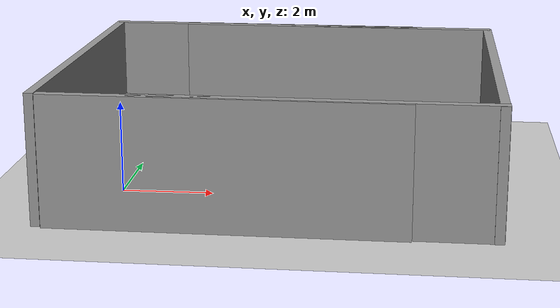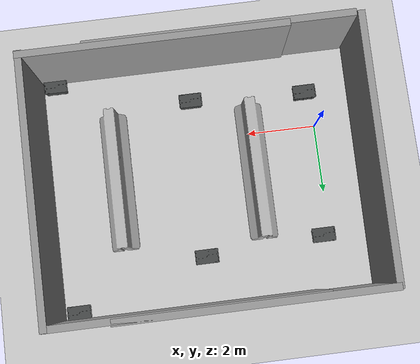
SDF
<sdf version="1.6">
 <world name="default">
  <light name="sun" type="directional">
   <pose>0 0 10 0 -0 0</pose>
   <diffuse>0.8 0.8 0.8 1</diffuse>
   <specular>0.1 0.1 0.1 1</specular>
   <attenuation>
    <range>1000</range>
    <constant>0.9</constant>
    <linear>0.01</linear>
    <quadratic>0.001</quadratic>
   </attenuation>
   <direction>-0.5 0.5 -1</direction>
  </light>
  <model name="ground_plane">
   <static>1</static>
   <link name="link">
    <collision name="collision">
     <geometry><plane><normal>0 0 1</normal><size>100 100</size></plane></geometry>
     <surface><friction><ode><mu>100</mu><mu2>50</mu2></ode></friction></surface>
    </collision>
    <visual name="visual">
     <cast_shadows>0</cast_shadows>
     <geometry><plane><normal>0 0 1</normal><size>100 100</size></plane></geometry>
     <material>
      <script><uri>file://media/materials/scripts/gazebo.material</uri><name>Gazebo/Grey</name></script>
     </material>
    </visual>
   </link>
  </model>
  <gravity>0 0 -9.8</gravity>
  <magnetic_field>6e-06 2.3e-05 -4.2e-05</magnetic_field>
  <atmosphere type="adiabatic"/>
  <physics name="default_physics" default="0" type="ode">
   <max_step_size>0.001</max_step_size>
   <real_time_factor>1</real_time_factor>
   <real_time_update_rate>1000</real_time_update_rate>
  </physics>
  <scene><ambient>0.4 0.4 0.4 1</ambient><background>0.7 0.7 0.7 1</background><shadows>1</shadows></scene>
  <spherical_coordinates>
   <surface_model>EARTH_WGS84</surface_model>
   <latitude_deg>0</latitude_deg>
   <longitude_deg>0</longitude_deg>
   <elevation>0</elevation>
   <heading_deg>0</heading_deg>
  </spherical_coordinates>
  <model name="Untitled8">
   <model name="grey_tote">
    <link name="link">
     <inertial>
      <pose>0 0 0.14155 0 -0 0</pose>
      <mass>3.53802</mass>
      <inertia>
       <ixx>0.0688358</ixx>
       <ixy>0</ixy>
       <ixz>0</ixz>
       <iyy>0.139596</iyy>
       <iyz>0</iyz>
       <izz>0.155909</izz>
      </inertia>
     </inertial>
     <collision name="lid">
      <pose>0 0 0.28958 0 -0 0</pose>
      <geometry><box><size>0.67768 0.41298 0.01588</size></box></geometry>
     </collision>
     <collision name="lid_lip_1">
      <pose>0 0.20063 0.3048 0 -0 0</pose>
      <geometry><box><size>0.65068 0.0105 0.0127</size></box></geometry>
     </collision>
     <collision name="lid_lip_2">
      <pose>0 -0.20063 0.3048 0 -0 0</pose>
      <geometry><box><size>0.65068 0.0105 0.0127</size></box></geometry>
     </collision>
     <collision name="lid_lip_3">
      <pose>0.32585 0 0.3048 0 -0 0</pose>
      <geometry><box><size>0.02602 0.31202 0.0127</size></box></geometry>
     </collision>
     <collision name="lid_lip_4">
      <pose>-0.32585 0 0.3048 0 -0 0</pose>
      <geometry><box><size>0.02602 0.31202 0.0127</size></box></geometry>
     </collision>
     <collision name="side_wall_1">
      <pose>0 -0.18 0.14155 0.061147 -0 0</pose>
      <geometry><box><size>0.58404 0.02602 0.283099</size></box></geometry>
     </collision>
     <collision name="side_wall_2">
      <pose>0 0.18 0.14155 -0.061147 0 0</pose>
      <geometry><box><size>0.58404 0.02602 0.283099</size></box></geometry>
     </collision>
     <collision name="side_wall_3">
      <pose>0.305 0 0.14155 0 0.061147 0</pose>
      <geometry><box><size>0.02602 0.33046 0.283099</size></box></geometry>
     </collision>
     <collision name="side_wall_4">
      <pose>-0.305 0 0.14155 0 -0.061147 0</pose>
      <geometry><box><size>0.02602 0.33046 0.283099</size></box></geometry>
     </collision>
     <collision name="bottom">
      <pose>0 0 0.01 0 -0 0</pose>
      <geometry><box><size>0.58404 0.33046 0.02</size></box></geometry>
     </collision>
     <collision name="corner_1">
      <pose>0.30202 -0.175 0.14155 0.061147 0.061147 -0</pose>
      <geometry><cylinder><radius>0.01268</radius><length>0.283099</length></cylinder></geometry>
     </collision>
     <collision name="corner_2">
      <pose>-0.30202 -0.175 0.14155 0.061147 -0.061147 0</pose>
      <geometry><cylinder><radius>0.01268</radius><length>0.283099</length></cylinder></geometry>
     </collision>
     <collision name="corner_3">
      <pose>-0.30202 0.175 0.14155 -0.061147 -0.061147 -0</pose>
      <geometry><cylinder><radius>0.01268</radius><length>0.283099</length></cylinder></geometry>
     </collision>
     <collision name="corner_4">
      <pose>0.30202 0.175 0.14155 -0.061147 0.061147 0</pose>
      <geometry><cylinder><radius>0.01268</radius><length>0.283099</length></cylinder></geometry>
     </collision>
     <visual name="visual"><geometry><mesh><uri>model://grey_tote/meshes/tote.dae</uri></mesh></geometry></visual>
    </link>
    <pose>3.83337 3.44393 0 0 -0 0</pose>
   </model>
   <model name="grey_tote_0">
    <link name="link">
     <inertial>
      <pose>0 0 0.14155 0 -0 0</pose>
      <mass>3.53802</mass>
      <inertia>
       <ixx>0.0688358</ixx>
       <ixy>0</ixy>
       <ixz>0</ixz>
       <iyy>0.139596</iyy>
       <iyz>0</iyz>
       <izz>0.155909</izz>
      </inertia>
     </inertial>
     <collision name="lid">
      <pose>0 0 0.28958 0 -0 0</pose>
      <geometry><box><size>0.67768 0.41298 0.01588</size></box></geometry>
     </collision>
     <collision name="lid_lip_1">
      <pose>0 0.20063 0.3048 0 -0 0</pose>
      <geometry><box><size>0.65068 0.0105 0.0127</size></box></geometry>
     </collision>
     <collision name="lid_lip_2">
      <pose>0 -0.20063 0.3048 0 -0 0</pose>
      <geometry><box><size>0.65068 0.0105 0.0127</size></box></geometry>
     </collision>
     <collision name="lid_lip_3">
      <pose>0.32585 0 0.3048 0 -0 0</pose>
      <geometry><box><size>0.02602 0.31202 0.0127</size></box></geometry>
     </collision>
     <collision name="lid_lip_4">
      <pose>-0.32585 0 0.3048 0 -0 0</pose>
      <geometry><box><size>0.02602 0.31202 0.0127</size></box></geometry>
     </collision>
     <collision name="side_wall_1">
      <pose>0 -0.18 0.14155 0.061147 -0 0</pose>
      <geometry><box><size>0.58404 0.02602 0.283099</size></box></geometry>
     </collision>
     <collision name="side_wall_2">
      <pose>0 0.18 0.14155 -0.061147 0 0</pose>
      <geometry><box><size>0.58404 0.02602 0.283099</size></box></geometry>
     </collision>
     <collision name="side_wall_3">
      <pose>0.305 0 0.14155 0 0.061147 0</pose>
      <geometry><box><size>0.02602 0.33046 0.283099</size></box></geometry>
     </collision>
     <collision name="side_wall_4">
      <pose>-0.305 0 0.14155 0 -0.061147 0</pose>
      <geometry><box><size>0.02602 0.33046 0.283099</size></box></geometry>
     </collision>
     <collision name="bottom">
      <pose>0 0 0.01 0 -0 0</pose>
      <geometry><box><size>0.58404 0.33046 0.02</size></box></geometry>
     </collision>
     <collision name="corner_1">
      <pose>0.30202 -0.175 0.14155 0.061147 0.061147 -0</pose>
      <geometry><cylinder><radius>0.01268</radius><length>0.283099</length></cylinder></geometry>
     </collision>
     <collision name="corner_2">
      <pose>-0.30202 -0.175 0.14155 0.061147 -0.061147 0</pose>
      <geometry><cylinder><radius>0.01268</radius><length>0.283099</length></cylinder></geometry>
     </collision>
     <collision name="corner_3">
      <pose>-0.30202 0.175 0.14155 -0.061147 -0.061147 -0</pose>
      <geometry><cylinder><radius>0.01268</radius><length>0.283099</length></cylinder></geometry>
     </collision>
     <collision name="corner_4">
      <pose>0.30202 0.175 0.14155 -0.061147 0.061147 0</pose>
      <geometry><cylinder><radius>0.01268</radius><length>0.283099</length></cylinder></geometry>
     </collision>
     <visual name="visual"><geometry><mesh><uri>model://grey_tote/meshes/tote.dae</uri></mesh></geometry></visual>
    </link>
    <pose>-0.001228 2.29141 0 0 -0 0</pose>
   </model>
   <model name="grey_tote_1">
    <link name="link">
     <inertial>
      <pose>0 0 0.14155 0 -0 0</pose>
      <mass>3.53802</mass>
      <inertia>
       <ixx>0.0688358</ixx>
       <ixy>0</ixy>
       <ixz>0</ixz>
       <iyy>0.139596</iyy>
       <iyz>0</iyz>
       <izz>0.155909</izz>
      </inertia>
     </inertial>
     <collision name="lid">
      <pose>0 0 0.28958 0 -0 0</pose>
      <geometry><box><size>0.67768 0.41298 0.01588</size></box></geometry>
     </collision>
     <collision name="lid_lip_1">
      <pose>0 0.20063 0.3048 0 -0 0</pose>
      <geometry><box><size>0.65068 0.0105 0.0127</size></box></geometry>
     </collision>
     <collision name="lid_lip_2">
      <pose>0 -0.20063 0.3048 0 -0 0</pose>
      <geometry><box><size>0.65068 0.0105 0.0127</size></box></geometry>
     </collision>
     <collision name="lid_lip_3">
      <pose>0.32585 0 0.3048 0 -0 0</pose>
      <geometry><box><size>0.02602 0.31202 0.0127</size></box></geometry>
     </collision>
     <collision name="lid_lip_4">
      <pose>-0.32585 0 0.3048 0 -0 0</pose>
      <geometry><box><size>0.02602 0.31202 0.0127</size></box></geometry>
     </collision>
     <collision name="side_wall_1">
      <pose>0 -0.18 0.14155 0.061147 -0 0</pose>
      <geometry><box><size>0.58404 0.02602 0.283099</size></box></geometry>
     </collision>
     <collision name="side_wall_2">
      <pose>0 0.18 0.14155 -0.061147 0 0</pose>
      <geometry><box><size>0.58404 0.02602 0.283099</size></box></geometry>
     </collision>
     <collision name="side_wall_3">
      <pose>0.305 0 0.14155 0 0.061147 0</pose>
      <geometry><box><size>0.02602 0.33046 0.283099</size></box></geometry>
     </collision>
     <collision name="side_wall_4">
      <pose>-0.305 0 0.14155 0 -0.061147 0</pose>
      <geometry><box><size>0.02602 0.33046 0.283099</size></box></geometry>
     </collision>
     <collision name="bottom">
      <pose>0 0 0.01 0 -0 0</pose>
      <geometry><box><size>0.58404 0.33046 0.02</size></box></geometry>
     </collision>
     <collision name="corner_1">
      <pose>0.30202 -0.175 0.14155 0.061147 0.061147 -0</pose>
      <geometry><cylinder><radius>0.01268</radius><length>0.283099</length></cylinder></geometry>
     </collision>
     <collision name="corner_2">
      <pose>-0.30202 -0.175 0.14155 0.061147 -0.061147 0</pose>
      <geometry><cylinder><radius>0.01268</radius><length>0.283099</length></cylinder></geometry>
     </collision>
     <collision name="corner_3">
      <pose>-0.30202 0.175 0.14155 -0.061147 -0.061147 -0</pose>
      <geometry><cylinder><radius>0.01268</radius><length>0.283099</length></cylinder></geometry>
     </collision>
     <collision name="corner_4">
      <pose>0.30202 0.175 0.14155 -0.061147 0.061147 0</pose>
      <geometry><cylinder><radius>0.01268</radius><length>0.283099</length></cylinder></geometry>
     </collision>
     <visual name="visual"><geometry><mesh><uri>model://grey_tote/meshes/tote.dae</uri></mesh></geometry></visual>
    </link>
    <pose>-3.46063 2.07932 0 0 -0 0</pose>
   </model>
   <model name="grey_tote_2">
    <link name="link">
     <inertial>
      <pose>0 0 0.14155 0 -0 0</pose>
      <mass>3.53802</mass>
      <inertia>
       <ixx>0.0688358</ixx>
       <ixy>0</ixy>
       <ixz>0</ixz>
       <iyy>0.139596</iyy>
       <iyz>0</iyz>
       <izz>0.155909</izz>
      </inertia>
     </inertial>
     <collision name="lid">
      <pose>0 0 0.28958 0 -0 0</pose>
      <geometry><box><size>0.67768 0.41298 0.01588</size></box></geometry>
     </collision>
     <collision name="lid_lip_1">
      <pose>0 0.20063 0.3048 0 -0 0</pose>
      <geometry><box><size>0.65068 0.0105 0.0127</size></box></geometry>
     </collision>
     <collision name="lid_lip_2">
      <pose>0 -0.20063 0.3048 0 -0 0</pose>
      <geometry><box><size>0.65068 0.0105 0.0127</size></box></geometry>
     </collision>
     <collision name="lid_lip_3">
      <pose>0.32585 0 0.3048 0 -0 0</pose>
      <geometry><box><size>0.02602 0.31202 0.0127</size></box></geometry>
     </collision>
     <collision name="lid_lip_4">
      <pose>-0.32585 0 0.3048 0 -0 0</pose>
      <geometry><box><size>0.02602 0.31202 0.0127</size></box></geometry>
     </collision>
     <collision name="side_wall_1">
      <pose>0 -0.18 0.14155 0.061147 -0 0</pose>
      <geometry><box><size>0.58404 0.02602 0.283099</size></box></geometry>
     </collision>
     <collision name="side_wall_2">
      <pose>0 0.18 0.14155 -0.061147 0 0</pose>
      <geometry><box><size>0.58404 0.02602 0.283099</size></box></geometry>
     </collision>
     <collision name="side_wall_3">
      <pose>0.305 0 0.14155 0 0.061147 0</pose>
      <geometry><box><size>0.02602 0.33046 0.283099</size></box></geometry>
     </collision>
     <collision name="side_wall_4">
      <pose>-0.305 0 0.14155 0 -0.061147 0</pose>
      <geometry><box><size>0.02602 0.33046 0.283099</size></box></geometry>
     </collision>
     <collision name="bottom">
      <pose>0 0 0.01 0 -0 0</pose>
      <geometry><box><size>0.58404 0.33046 0.02</size></box></geometry>
     </collision>
     <collision name="corner_1">
      <pose>0.30202 -0.175 0.14155 0.061147 0.061147 -0</pose>
      <geometry><cylinder><radius>0.01268</radius><length>0.283099</length></cylinder></geometry>
     </collision>
     <collision name="corner_2">
      <pose>-0.30202 -0.175 0.14155 0.061147 -0.061147 0</pose>
      <geometry><cylinder><radius>0.01268</radius><length>0.283099</length></cylinder></geometry>
     </collision>
     <collision name="corner_3">
      <pose>-0.30202 0.175 0.14155 -0.061147 -0.061147 -0</pose>
      <geometry><cylinder><radius>0.01268</radius><length>0.283099</length></cylinder></geometry>
     </collision>
     <collision name="corner_4">
      <pose>0.30202 0.175 0.14155 -0.061147 0.061147 0</pose>
      <geometry><cylinder><radius>0.01268</radius><length>0.283099</length></cylinder></geometry>
     </collision>
     <visual name="visual"><geometry><mesh><uri>model://grey_tote/meshes/tote.dae</uri></mesh></geometry></visual>
    </link>
    <pose>3.89475 -3.31826 0 0 -0 0</pose>
   </model>
   <model name="grey_tote_3">
    <link name="link">
     <inertial>
      <pose>0 0 0.14155 0 -0 0</pose>
      <mass>3.53802</mass>
      <inertia>
       <ixx>0.0688358</ixx>
       <ixy>0</ixy>
       <ixz>0</ixz>
       <iyy>0.139596</iyy>
       <iyz>0</iyz>
       <izz>0.155909</izz>
      </inertia>
     </inertial>
     <collision name="lid">
      <pose>0 0 0.28958 0 -0 0</pose>
      <geometry><box><size>0.67768 0.41298 0.01588</size></box></geometry>
     </collision>
     <collision name="lid_lip_1">
      <pose>0 0.20063 0.3048 0 -0 0</pose>
      <geometry><box><size>0.65068 0.0105 0.0127</size></box></geometry>
     </collision>
     <collision name="lid_lip_2">
      <pose>0 -0.20063 0.3048 0 -0 0</pose>
      <geometry><box><size>0.65068 0.0105 0.0127</size></box></geometry>
     </collision>
     <collision name="lid_lip_3">
      <pose>0.32585 0 0.3048 0 -0 0</pose>
      <geometry><box><size>0.02602 0.31202 0.0127</size></box></geometry>
     </collision>
     <collision name="lid_lip_4">
      <pose>-0.32585 0 0.3048 0 -0 0</pose>
      <geometry><box><size>0.02602 0.31202 0.0127</size></box></geometry>
     </collision>
     <collision name="side_wall_1">
      <pose>0 -0.18 0.14155 0.061147 -0 0</pose>
      <geometry><box><size>0.58404 0.02602 0.283099</size></box></geometry>
     </collision>
     <collision name="side_wall_2">
      <pose>0 0.18 0.14155 -0.061147 0 0</pose>
      <geometry><box><size>0.58404 0.02602 0.283099</size></box></geometry>
     </collision>
     <collision name="side_wall_3">
      <pose>0.305 0 0.14155 0 0.061147 0</pose>
      <geometry><box><size>0.02602 0.33046 0.283099</size></box></geometry>
     </collision>
     <collision name="side_wall_4">
      <pose>-0.305 0 0.14155 0 -0.061147 0</pose>
      <geometry><box><size>0.02602 0.33046 0.283099</size></box></geometry>
     </collision>
     <collision name="bottom">
      <pose>0 0 0.01 0 -0 0</pose>
      <geometry><box><size>0.58404 0.33046 0.02</size></box></geometry>
     </collision>
     <collision name="corner_1">
      <pose>0.30202 -0.175 0.14155 0.061147 0.061147 -0</pose>
      <geometry><cylinder><radius>0.01268</radius><length>0.283099</length></cylinder></geometry>
     </collision>
     <collision name="corner_2">
      <pose>-0.30202 -0.175 0.14155 0.061147 -0.061147 0</pose>
      <geometry><cylinder><radius>0.01268</radius><length>0.283099</length></cylinder></geometry>
     </collision>
     <collision name="corner_3">
      <pose>-0.30202 0.175 0.14155 -0.061147 -0.061147 -0</pose>
      <geometry><cylinder><radius>0.01268</radius><length>0.283099</length></cylinder></geometry>
     </collision>
     <collision name="corner_4">
      <pose>0.30202 0.175 0.14155 -0.061147 0.061147 0</pose>
      <geometry><cylinder><radius>0.01268</radius><length>0.283099</length></cylinder></geometry>
     </collision>
     <visual name="visual"><geometry><mesh><uri>model://grey_tote/meshes/tote.dae</uri></mesh></geometry></visual>
    </link>
    <pose>-0.080959 -2.38634 0 0 -0 0</pose>
   </model>
   <model name="grey_tote_4">
    <link name="link">
     <inertial>
      <pose>0 0 0.14155 0 -0 0</pose>
      <mass>3.53802</mass>
      <inertia>
       <ixx>0.0688358</ixx>
       <ixy>0</ixy>
       <ixz>0</ixz>
       <iyy>0.139596</iyy>
       <iyz>0</iyz>
       <izz>0.155909</izz>
      </inertia>
     </inertial>
     <collision name="lid">
      <pose>0 0 0.28958 0 -0 0</pose>
      <geometry><box><size>0.67768 0.41298 0.01588</size></box></geometry>
     </collision>
     <collision name="lid_lip_1">
      <pose>0 0.20063 0.3048 0 -0 0</pose>
      <geometry><box><size>0.65068 0.0105 0.0127</size></box></geometry>
     </collision>
     <collision name="lid_lip_2">
      <pose>0 -0.20063 0.3048 0 -0 0</pose>
      <geometry><box><size>0.65068 0.0105 0.0127</size></box></geometry>
     </collision>
     <collision name="lid_lip_3">
      <pose>0.32585 0 0.3048 0 -0 0</pose>
      <geometry><box><size>0.02602 0.31202 0.0127</size></box></geometry>
     </collision>
     <collision name="lid_lip_4">
      <pose>-0.32585 0 0.3048 0 -0 0</pose>
      <geometry><box><size>0.02602 0.31202 0.0127</size></box></geometry>
     </collision>
     <collision name="side_wall_1">
      <pose>0 -0.18 0.14155 0.061147 -0 0</pose>
      <geometry><box><size>0.58404 0.02602 0.283099</size></box></geometry>
     </collision>
     <collision name="side_wall_2">
      <pose>0 0.18 0.14155 -0.061147 0 0</pose>
      <geometry><box><size>0.58404 0.02602 0.283099</size></box></geometry>
     </collision>
     <collision name="side_wall_3">
      <pose>0.305 0 0.14155 0 0.061147 0</pose>
      <geometry><box><size>0.02602 0.33046 0.283099</size></box></geometry>
     </collision>
     <collision name="side_wall_4">
      <pose>-0.305 0 0.14155 0 -0.061147 0</pose>
      <geometry><box><size>0.02602 0.33046 0.283099</size></box></geometry>
     </collision>
     <collision name="bottom">
      <pose>0 0 0.01 0 -0 0</pose>
      <geometry><box><size>0.58404 0.33046 0.02</size></box></geometry>
     </collision>
     <collision name="corner_1">
      <pose>0.30202 -0.175 0.14155 0.061147 0.061147 -0</pose>
      <geometry><cylinder><radius>0.01268</radius><length>0.283099</length></cylinder></geometry>
     </collision>
     <collision name="corner_2">
      <pose>-0.30202 -0.175 0.14155 0.061147 -0.061147 0</pose>
      <geometry><cylinder><radius>0.01268</radius><length>0.283099</length></cylinder></geometry>
     </collision>
     <collision name="corner_3">
      <pose>-0.30202 0.175 0.14155 -0.061147 -0.061147 -0</pose>
      <geometry><cylinder><radius>0.01268</radius><length>0.283099</length></cylinder></geometry>
     </collision>
     <collision name="corner_4">
      <pose>0.30202 0.175 0.14155 -0.061147 0.061147 0</pose>
      <geometry><cylinder><radius>0.01268</radius><length>0.283099</length></cylinder></geometry>
     </collision>
     <visual name="visual"><geometry><mesh><uri>model://grey_tote/meshes/tote.dae</uri></mesh></geometry></visual>
    </link>
    <pose>-3.50069 -2.23869 0 0 -0 0</pose>
   </model>
   <model name="grey_wall">
    <static>1</static>
    <link name="link">
     <pose>0 0 1.4 0 -0 0</pose>
     <collision name="collision"><geometry><box><size>7.5 0.2 2.8</size></box></geometry></collision>
     <visual name="visual">
      <cast_shadows>0</cast_shadows>
      <geometry><box><size>7.5 0.2 2.8</size></box></geometry>
      <material>
       <script>
        <uri>model://grey_wall/materials/scripts</uri>
        <uri>model://grey_wall/materials/textures</uri>
        <name>vrc/grey_wall</name>
       </script>
      </material>
     </visual>
    </link>
    <pose>-1.0676 -3.63844 0 0 -0 0</pose>
   </model>
   <model name="grey_wall_0">
    <static>1</static>
    <link name="link">
     <pose>0 0 1.4 0 -0 0</pose>
     <collision name="collision"><geometry><box><size>7.5 0.2 2.8</size></box></geometry></collision>
     <visual name="visual">
      <cast_shadows>0</cast_shadows>
      <geometry><box><size>7.5 0.2 2.8</size></box></geometry>
      <material>
       <script>
        <uri>model://grey_wall/materials/scripts</uri>
        <uri>model://grey_wall/materials/textures</uri>
        <name>vrc/grey_wall</name>
       </script>
      </material>
     </visual>
    </link>
    <pose>0.749197 -3.57597 0 0 -0 0</pose>
   </model>
   <model name="grey_wall_1">
    <static>1</static>
    <link name="link">
     <pose>0 0 1.4 0 -0 0</pose>
     <collision name="collision"><geometry><box><size>7.5 0.2 2.8</size></box></geometry></collision>
     <visual name="visual">
      <cast_shadows>0</cast_shadows>
      <geometry><box><size>7.5 0.2 2.8</size></box></geometry>
      <material>
       <script>
        <uri>model://grey_wall/materials/scripts</uri>
        <uri>model://grey_wall/materials/textures</uri>
        <name>vrc/grey_wall</name>
       </script>
      </material>
     </visual>
    </link>
    <pose>-1.10439 3.75555 0 0 -0 0</pose>
   </model>
   <model name="grey_wall_2">
    <static>1</static>
    <link name="link">
     <pose>0 0 1.4 0 -0 0</pose>
     <collision name="collision"><geometry><box><size>7.5 0.2 2.8</size></box></geometry></collision>
     <visual name="visual">
      <cast_shadows>0</cast_shadows>
      <geometry><box><size>7.5 0.2 2.8</size></box></geometry>
      <material>
       <script>
        <uri>model://grey_wall/materials/scripts</uri>
        <uri>model://grey_wall/materials/textures</uri>
        <name>vrc/grey_wall</name>
       </script>
      </material>
     </visual>
    </link>
    <pose>0.679333 3.71701 0 0 -0 0</pose>
   </model>
   <model name="grey_wall_3">
    <static>1</static>
    <link name="link">
     <pose>0 0 1.4 0 -0 0</pose>
     <collision name="collision"><geometry><box><size>7.5 0.2 2.8</size></box></geometry></collision>
     <visual name="visual">
      <cast_shadows>0</cast_shadows>
      <geometry><box><size>7.5 0.2 2.8</size></box></geometry>
      <material>
       <script>
        <uri>model://grey_wall/materials/scripts</uri>
        <uri>model://grey_wall/materials/textures</uri>
        <name>vrc/grey_wall</name>
       </script>
      </material>
     </visual>
    </link>
    <pose>-4.87279 0.075946 0 0 0 -1.58954</pose>
   </model>
   <model name="grey_wall_4">
    <static>1</static>
    <link name="link">
     <pose>0 0 1.4 0 -0 0</pose>
     <collision name="collision"><geometry><box><size>7.5 0.2 2.8</size></box></geometry></collision>
     <visual name="visual">
      <cast_shadows>0</cast_shadows>
      <geometry><box><size>7.5 0.2 2.8</size></box></geometry>
      <material>
       <script>
        <uri>model://grey_wall/materials/scripts</uri>
        <uri>model://grey_wall/materials/textures</uri>
        <name>vrc/grey_wall</name>
       </script>
      </material>
     </visual>
    </link>
    <pose>4.37824 0.057644 0 0 -0 1.57438</pose>
   </model>
   <model name="jersey_barrier">
    <static>1</static>
    <link name="link">
     <visual name="visual">
      <geometry><mesh><uri>model://jersey_barrier/meshes/jersey_barrier.dae</uri></mesh></geometry>
     </visual>
     <collision name="upright">
      <pose>0 0 0.5715 0 -0 0</pose>
      <geometry><box><size>4.06542 0.3063 1.143</size></box></geometry>
     </collision>
     <collision name="base">
      <pose>0 0 0.032258 0 -0 0</pose>
      <geometry><box><size>4.06542 0.8107 0.064516</size></box></geometry>
     </collision>
     <collision name="base2">
      <pose>0 0 0.1 0 -0 0</pose>
      <geometry><box><size>4.06542 0.65 0.1</size></box></geometry>
     </collision>
     <collision name="base3">
      <pose>0 0 0.2 0 -0 0</pose>
      <geometry><box><size>4.06542 0.5 0.1</size></box></geometry>
     </collision>
     <collision name="left-angle">
      <pose>0 -0.224 0.2401 0.9 -0 0</pose>
      <geometry><box><size>4.06542 0.5 0.064516</size></box></geometry>
     </collision>
     <collision name="right-angle">
      <pose>0 0.224 0.2401 -0.9 0 0</pose>
      <geometry><box><size>4.06542 0.5 0.064516</size></box></geometry>
     </collision>
    </link>
    <pose>-1.76019 -0.051587 0 0 0 -1.57525</pose>
   </model>
   <model name="jersey_barrier_clone">
    <static>1</static>
    <link name="link">
     <visual name="visual">
      <geometry><mesh><uri>model://jersey_barrier/meshes/jersey_barrier.dae</uri></mesh></geometry>
     </visual>
     <collision name="upright">
      <pose>0 0 0.5715 0 -0 0</pose>
      <geometry><box><size>4.06542 0.3063 1.143</size></box></geometry>
     </collision>
     <collision name="base">
      <pose>0 0 0.032258 0 -0 0</pose>
      <geometry><box><size>4.06542 0.8107 0.064516</size></box></geometry>
     </collision>
     <collision name="base2">
      <pose>0 0 0.1 0 -0 0</pose>
      <geometry><box><size>4.06542 0.65 0.1</size></box></geometry>
     </collision>
     <collision name="base3">
      <pose>0 0 0.2 0 -0 0</pose>
      <geometry><box><size>4.06542 0.5 0.1</size></box></geometry>
     </collision>
     <collision name="left-angle">
      <pose>0 -0.224 0.2401 0.9 -0 0</pose>
      <geometry><box><size>4.06542 0.5 0.064516</size></box></geometry>
     </collision>
     <collision name="right-angle">
      <pose>0 0.224 0.2401 -0.9 0 0</pose>
      <geometry><box><size>4.06542 0.5 0.064516</size></box></geometry>
     </collision>
    </link>
    <pose>2.31357 -0.211509 0 0 0 -1.57525</pose>
   </model>
   <static>0</static>
   <pose>3.68643 1.21151 0 0 -0 0</pose>
  </model>
 </world>
</sdf>
